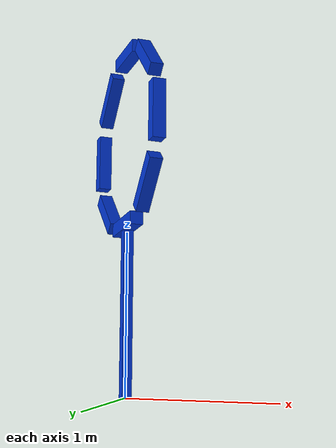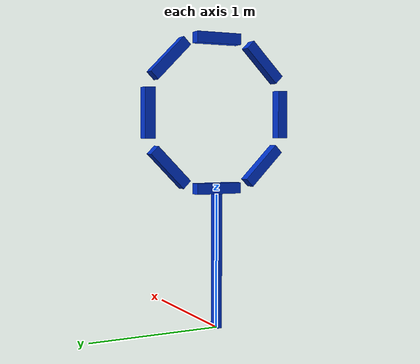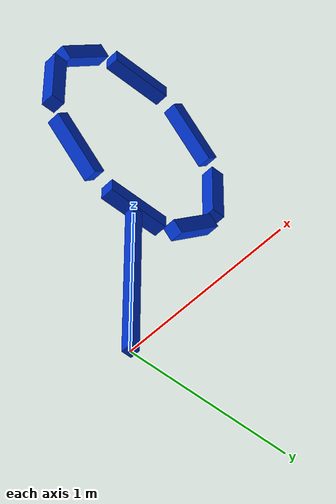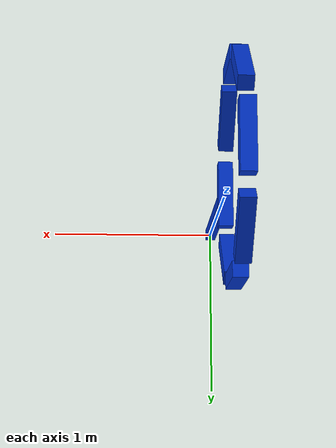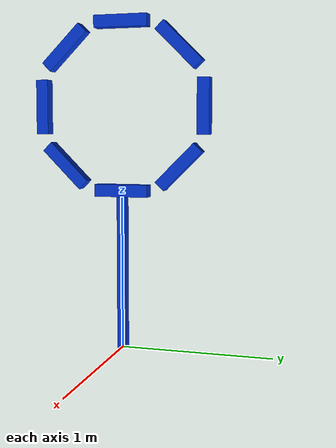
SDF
<?xml version="1.0" encoding="UTF-8"?>
<sdf version="1.9">
  <model name="robocup_obs2_round_gate">
    <static>true</static>
    <link name="seg0"><pose>0 0.55 1.60 1.5708 0 0</pose><visual name="visual"><geometry><box><size>0.08 0.36 0.08</size></box></geometry><material><diffuse>0.0 0.20 0.80 1</diffuse></material></visual></link>
    <link name="seg1"><pose>0 0.389 1.989 2.35619 0 0</pose><visual name="visual"><geometry><box><size>0.08 0.36 0.08</size></box></geometry><material><diffuse>0.0 0.20 0.80 1</diffuse></material></visual></link>
    <link name="seg2"><pose>0 0 2.15 3.14159 0 0</pose><visual name="visual"><geometry><box><size>0.08 0.36 0.08</size></box></geometry><material><diffuse>0.0 0.20 0.80 1</diffuse></material></visual></link>
    <link name="seg3"><pose>0 -0.389 1.989 3.92699 0 0</pose><visual name="visual"><geometry><box><size>0.08 0.36 0.08</size></box></geometry><material><diffuse>0.0 0.20 0.80 1</diffuse></material></visual></link>
    <link name="seg4"><pose>0 -0.55 1.60 4.71239 0 0</pose><visual name="visual"><geometry><box><size>0.08 0.36 0.08</size></box></geometry><material><diffuse>0.0 0.20 0.80 1</diffuse></material></visual></link>
    <link name="seg5"><pose>0 -0.389 1.211 5.49779 0 0</pose><visual name="visual"><geometry><box><size>0.08 0.36 0.08</size></box></geometry><material><diffuse>0.0 0.20 0.80 1</diffuse></material></visual></link>
    <link name="seg6"><pose>0 0 1.05 0 0 0</pose><visual name="visual"><geometry><box><size>0.08 0.36 0.08</size></box></geometry><material><diffuse>0.0 0.20 0.80 1</diffuse></material></visual></link>
    <link name="seg7"><pose>0 0.389 1.211 0.7854 0 0</pose><visual name="visual"><geometry><box><size>0.08 0.36 0.08</size></box></geometry><material><diffuse>0.0 0.20 0.80 1</diffuse></material></visual></link>
    <link name="support">
      <pose>0 0 0.53 0 0 0</pose>
      <visual name="visual">
        <geometry><box><size>0.06 0.06 1.06</size></box></geometry>
        <material><diffuse>0.0 0.20 0.80 1</diffuse></material>
      </visual>
    </link>
  </model>
</sdf>
